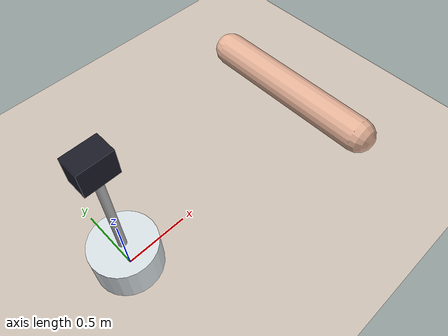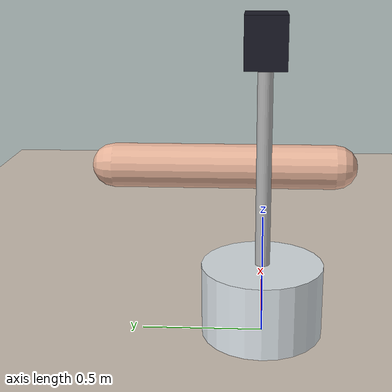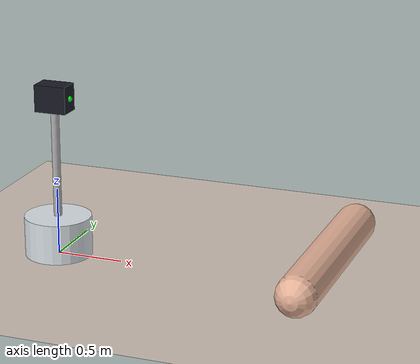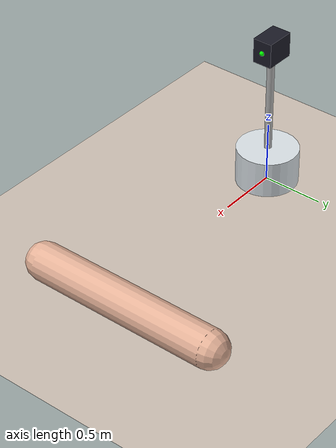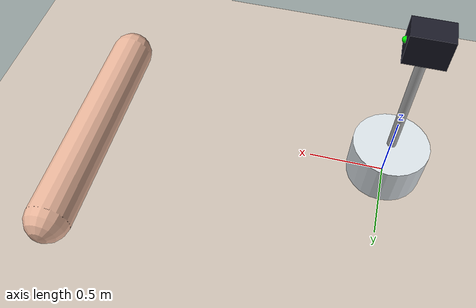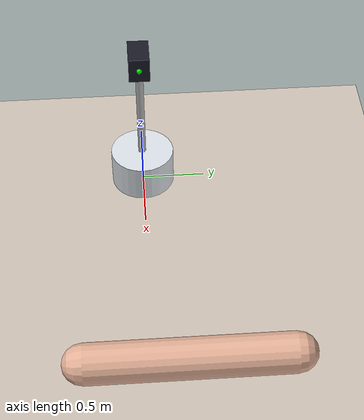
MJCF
<mujoco model="elderly_companion_robot">
  <compiler angle="radian" coordinate="local"/>
  <option gravity="0 0 -9.81" timestep="0.002" solver="Newton"/>
  <asset>
    <material name="body_mat" rgba="0.85 0.88 0.9 1.0"/>
    <material name="screen_mat" rgba="0.1 0.1 0.15 1.0"/>
    <material name="floor_mat" rgba="0.8 0.75 0.7 1.0"/>
  </asset>
  <worldbody>
    <geom name="floor" type="plane" size="8 8 0.1" material="floor_mat"/>
    <light directional="true" pos="0 0 5" dir="0 0 -1"/>
    <!-- Recumbent Human Mock Obstacle (Simulated Fall Pose) -->
    <geom name="human_avatar_recumbent" type="capsule" fromto="2.0 1.0 0.15 2.0 -0.5 0.15" size="0.15" rgba="0.9 0.7 0.6 1"/>
    <body name="companion_base" pos="0 0 0.15">
      <freejoint name="base_joint"/>
      <geom name="chassis" type="cylinder" size="0.25 0.15" material="body_mat" mass="18.0"/>
      <!-- Mast elevating camera to human observation height (1.1m) -->
      <geom name="mast" type="cylinder" size="0.03 0.45" pos="0 0 0.55" rgba="0.7 0.7 0.7 1" mass="2.0"/>
      <geom name="screen_head" type="box" size="0.12 0.08 0.10" pos="0 0 1.05" material="screen_mat" mass="1.5"/>
      <site name="camera_rgbd" pos="0.12 0 1.05" size="0.02" rgba="0 1 0 1"/>
    </body>
  </worldbody>
</mujoco>
